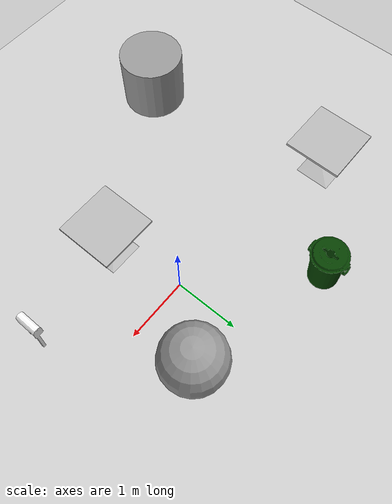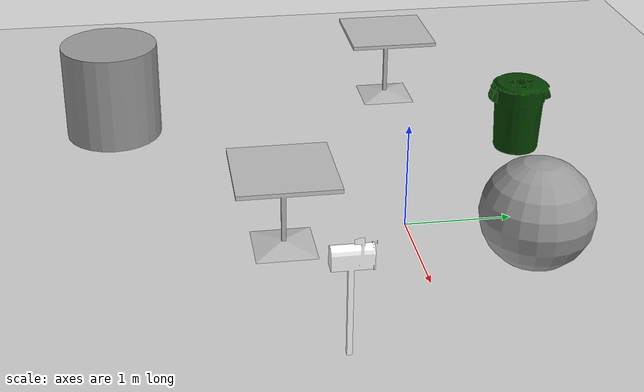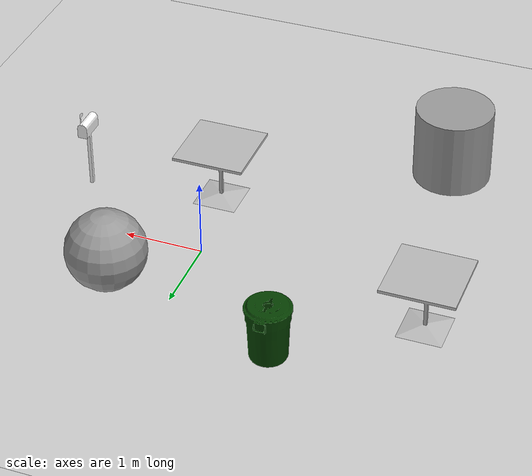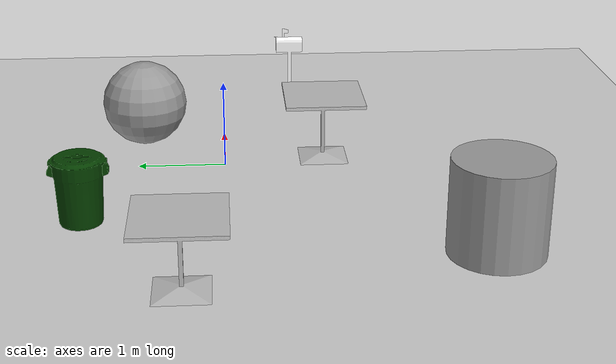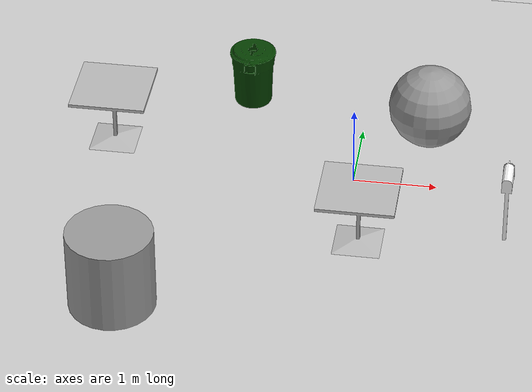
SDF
<sdf version="1.7">
 <world name="default">
  <light name="sun" type="directional">
   <pose>0 0 10 0 -0 0</pose>
   <diffuse>0.8 0.8 0.8 1</diffuse>
   <specular>0.2 0.2 0.2 1</specular>
   <attenuation>
    <range>1000</range>
    <constant>0.9</constant>
    <linear>0.01</linear>
    <quadratic>0.001</quadratic>
   </attenuation>
   <direction>-0.5 0.1 -0.9</direction>
   <spot><inner_angle>0</inner_angle><outer_angle>0</outer_angle><falloff>0</falloff></spot>
  </light>
  <model name="ground_plane">
   <static>1</static>
   <link name="link">
    <collision name="collision">
     <geometry><plane><normal>0 0 1</normal><size>100 100</size></plane></geometry>
     <surface><friction><ode><mu>100</mu><mu2>50</mu2></ode></friction></surface>
    </collision>
    <visual name="visual">
     <cast_shadows>0</cast_shadows>
     <geometry><plane><normal>0 0 1</normal><size>100 100</size></plane></geometry>
     <material>
      <script><uri>file://media/materials/scripts/gazebo.material</uri><name>Gazebo/Grey</name></script>
     </material>
    </visual>
   </link>
  </model>
  <gravity>0 0 -9.8</gravity>
  <magnetic_field>6e-06 2.3e-05 -4.2e-05</magnetic_field>
  <atmosphere type="adiabatic"/>
  <physics type="ode">
   <max_step_size>0.001</max_step_size>
   <real_time_factor>1</real_time_factor>
   <real_time_update_rate>1000</real_time_update_rate>
  </physics>
  <scene><ambient>0.4 0.4 0.4 1</ambient><background>0.7 0.7 0.7 1</background><shadows>1</shadows></scene>
  <audio><device>default</device></audio>
  <spherical_coordinates>
   <surface_model>EARTH_WGS84</surface_model>
   <latitude_deg>0</latitude_deg>
   <longitude_deg>0</longitude_deg>
   <elevation>0</elevation>
   <heading_deg>0</heading_deg>
  </spherical_coordinates>
  <model name="unit_sphere">
   <pose>0.809989 0.95321 0.5 0 -0 0</pose>
   <link name="link">
    <inertial>
     <mass>1</mass>
     <inertia><ixx>0.1</ixx><ixy>0</ixy><ixz>0</ixz><iyy>0.1</iyy><iyz>0</iyz><izz>0.1</izz></inertia>
    </inertial>
    <collision name="collision"><geometry><sphere><radius>0.5</radius></sphere></geometry></collision>
    <visual name="visual">
     <geometry><sphere><radius>0.5</radius></sphere></geometry>
     <material>
      <script><name>Gazebo/Grey</name><uri>file://media/materials/scripts/gazebo.material</uri></script>
     </material>
    </visual>
   </link>
  </model>
  <model name="cafe_table">
   <static>1</static>
   <link name="link">
    <collision name="surface">
     <pose>0 0 0.755 0 -0 0</pose>
     <geometry><box><size>0.913 0.913 0.04</size></box></geometry>
    </collision>
    <collision name="column">
     <pose>0 0 0.37 0 -0 0</pose>
     <geometry><box><size>0.042 0.042 0.74</size></box></geometry>
    </collision>
    <collision name="base">
     <pose>0 0 0.02 0 -0 0</pose>
     <geometry><box><size>0.56 0.56 0.04</size></box></geometry>
    </collision>
    <visual name="visual">
     <geometry><mesh><uri>model://cafe_table/meshes/cafe_table.dae</uri></mesh></geometry>
    </visual>
   </link>
   <pose>0.202289 -1.15654 0 0 -0 0</pose>
  </model>
  <model name="first_2015_trash_can">
   <link name="link">
    <inertial>
     <pose>0 0 0.3683 0 -0 0</pose>
     <mass>4.83076</mass>
     <inertia>
      <ixx>0.281534</ixx>
      <ixy>0</ixy>
      <ixz>0</ixz>
      <iyy>0.281534</iyy>
      <iyz>0</iyz>
      <izz>0.126223</izz>
     </inertia>
    </inertial>
    <visual name="visual">
     <geometry><mesh><uri>model://first_2015_trash_can/meshes/trash_can.dae</uri></mesh></geometry>
    </visual>
    <collision name="collision">
     <geometry><mesh><uri>model://first_2015_trash_can/meshes/trash_can.dae</uri></mesh></geometry>
    </collision>
   </link>
   <pose>-1.4441 1.50666 2e-06 -1.3e-05 -9e-06 -0.000295</pose>
  </model>
  <model name="Mailbox">
   <link name="link">
    <collision name="collision">
     <geometry><mesh><uri>model://mailbox/meshes/mailbox.dae</uri></mesh></geometry>
    </collision>
    <visual name="visual">
     <geometry><mesh><uri>model://mailbox/meshes/mailbox.dae</uri></mesh></geometry>
     <material>
      <script>
       <uri>model://mailbox/materials/scripts</uri>
       <uri>model://mailbox/materials/textures</uri>
       <name>Mailbox/Diffuse</name>
      </script>
     </material>
    </visual>
    <inertial>
     <inertia><ixx>1</ixx><ixy>0</ixy><ixz>0</ixz><iyy>1</iyy><iyz>0</iyz><izz>1</izz></inertia>
     <mass>1</mass>
    </inertial>
   </link>
   <pose>1.87567 -0.865865 -9e-06 8e-06 -9e-06 0</pose>
  </model>
  <model name="unit_cylinder">
   <pose>-2.4002 -2.6487 0.499993 -3e-06 -3e-06 0</pose>
   <link name="link">
    <inertial>
     <mass>1</mass>
     <inertia><ixx>0.145833</ixx><ixy>0</ixy><ixz>0</ixz><iyy>0.145833</iyy><iyz>0</iyz><izz>0.125</izz></inertia>
    </inertial>
    <collision name="collision">
     <geometry><cylinder><radius>0.5</radius><length>1</length></cylinder></geometry>
    </collision>
    <visual name="visual">
     <geometry><cylinder><radius>0.5</radius><length>1</length></cylinder></geometry>
     <material>
      <script><name>Gazebo/Grey</name><uri>file://media/materials/scripts/gazebo.material</uri></script>
     </material>
    </visual>
   </link>
  </model>
  <model name="cafe_table_0">
   <static>1</static>
   <link name="link">
    <collision name="surface">
     <pose>0 0 0.755 0 -0 0</pose>
     <geometry><box><size>0.913 0.913 0.04</size></box></geometry>
    </collision>
    <collision name="column">
     <pose>0 0 0.37 0 -0 0</pose>
     <geometry><box><size>0.042 0.042 0.74</size></box></geometry>
    </collision>
    <collision name="base">
     <pose>0 0 0.02 0 -0 0</pose>
     <geometry><box><size>0.56 0.56 0.04</size></box></geometry>
    </collision>
    <visual name="visual">
     <geometry><mesh><uri>model://cafe_table/meshes/cafe_table.dae</uri></mesh></geometry>
    </visual>
   </link>
   <pose>-2.97981 0.428688 0 0 -0 0</pose>
  </model>
 </world>
</sdf>
